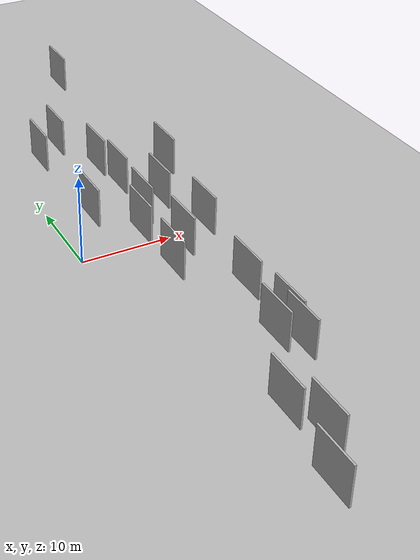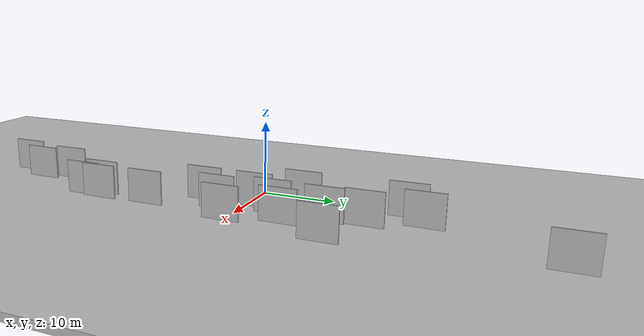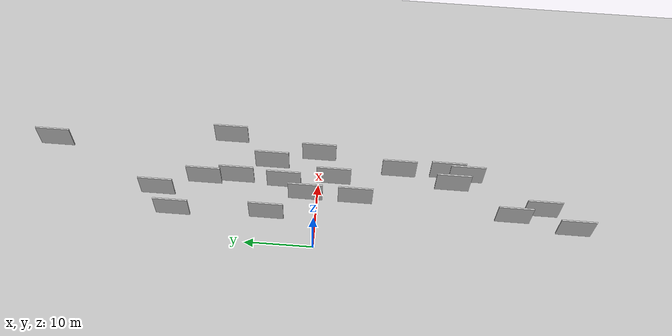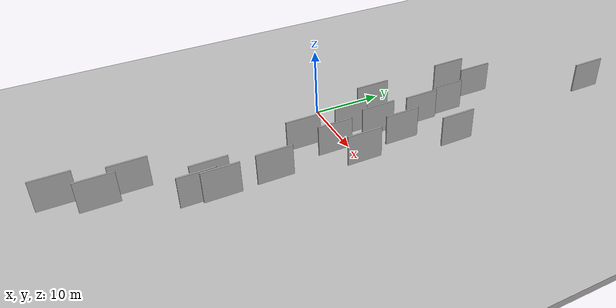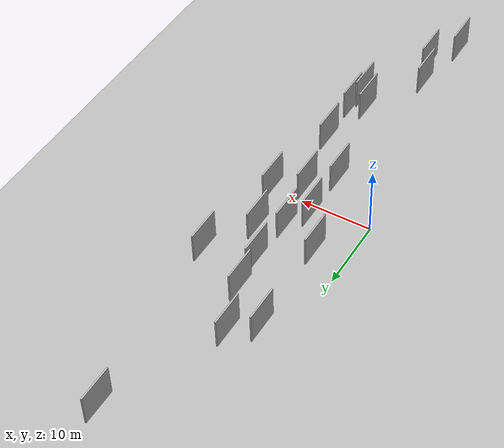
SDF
<?xml version="1.0" encoding="utf-8"?>

<sdf version="1.6">

   <world name="default">

      <gui fullscreen="0">

         <camera name="user_camera">

            <pose>-15 0 4.57585 0 0 0</pose>

            <view_controller>orbit</view_controller>

         </camera>

      </gui>

      <scene>

         <sky>

           <clouds>

             <speed>12</speed>

           </clouds>

         </sky>

         <ambient>0.4 0.4 0.4 1</ambient>

         <background>0.7 0.7 0.7 1</background>

         <shadows>1</shadows>

      </scene>

      <gravity>0 0 -9.8066</gravity>

      <magnetic_field>6e-06 2.3e-05 -4.2e-05</magnetic_field>

      <physics default="0" name="default_physics" type="ode">

         <ode>

            <solver>

               <type>quick</type>

               <iters>10</iters>

               <sor>1.0</sor>

               <use_dynamic_moi_rescaling>0</use_dynamic_moi_rescaling>

            </solver>

            <constraints>

               <cfm>0</cfm>

               <erp>0.2</erp>

               <contact_max_correcting_vel>100</contact_max_correcting_vel>

               <contact_surface_layer>0.001</contact_surface_layer>

            </constraints>

         </ode>

         <max_step_size>0.004</max_step_size>

         <real_time_factor>1</real_time_factor>

         <real_time_update_rate>250</real_time_update_rate>

      </physics>

      <light name="sun" type="directional">

         <cast_shadows>1</cast_shadows>

         <pose>0 0 10 0 0 0</pose>

         <diffuse>0.8 0.8 0.8 1</diffuse>

         <specular>0.2 0.2 0.2 1</specular>

         <attenuation>

            <range>1000</range>

            <constant>0.9</constant>

            <linear>0.01</linear>

            <quadratic>0.001</quadratic>

         </attenuation>

         <direction>-0.5 0.1 -0.9</direction>

      </light>

      <include>

         <name>ground_plane_1</name>

         <uri>model://HANNAS_ground_plane</uri>

         <pose>0 0 0  0 0 0</pose>

      </include>

      <include>

         <name>ground_plane_2</name>

         <uri>model://HANNAS_ground_plane</uri>

         <pose>100 0 0  0 0 0</pose>

      </include>

      <model name="HANNAS_wall_1">

         <static>1</static>

         <pose frame="">12.7183 -18.7903 0.0 0.000000 0.000000 1.570796</pose>

         <link name="link">

            <pose frame="">0 0 2.50 0 0 0</pose>

            <collision name="collision">

               <geometry>

                  <box>

                     <size>5.00 0.2 5.00</size>

                  </box>

               </geometry>

               <max_contacts>10</max_contacts>

               <surface>

                  <contact>

                     <ode/>

                  </contact>

                  <bounce/>

                  <friction>

                     <torsional>

                        <ode/>

                     </torsional>

                     <ode/>

                  </friction>

               </surface>

            </collision>

            <visual name="visual">

               <cast_shadows>0</cast_shadows>

               <geometry>

                  <box>

                     <size>5.00 0.2 5.00</size>

                  </box>

               </geometry>

               <material>

                  <script>

                     <uri>model://HANNAS_wall/materials/scripts</uri>

                     <uri>model://HANNAS_wall/materials/textures</uri>

                     <name>vrc/HANNAS_wall</name>

                  </script>

               </material>

            </visual>

            <self_collide>0</self_collide>

            <enable_wind>0</enable_wind>

            <kinematic>0</kinematic>

         </link>

      </model>

      <model name="HANNAS_wall_2">

         <static>1</static>

         <pose frame="">7.5720 -32.5413 0.0 0.000000 0.000000 1.570796</pose>

         <link name="link">

            <pose frame="">0 0 2.50 0 0 0</pose>

            <collision name="collision">

               <geometry>

                  <box>

                     <size>5.00 0.2 5.00</size>

                  </box>

               </geometry>

               <max_contacts>10</max_contacts>

               <surface>

                  <contact>

                     <ode/>

                  </contact>

                  <bounce/>

                  <friction>

                     <torsional>

                        <ode/>

                     </torsional>

                     <ode/>

                  </friction>

               </surface>

            </collision>

            <visual name="visual">

               <cast_shadows>0</cast_shadows>

               <geometry>

                  <box>

                     <size>5.00 0.2 5.00</size>

                  </box>

               </geometry>

               <material>

                  <script>

                     <uri>model://HANNAS_wall/materials/scripts</uri>

                     <uri>model://HANNAS_wall/materials/textures</uri>

                     <name>vrc/HANNAS_wall</name>

                  </script>

               </material>

            </visual>

            <self_collide>0</self_collide>

            <enable_wind>0</enable_wind>

            <kinematic>0</kinematic>

         </link>

      </model>

      <model name="HANNAS_wall_3">

         <static>1</static>

         <pose frame="">3.5824 20.7424 0.0 0.000000 0.000000 1.570796</pose>

         <link name="link">

            <pose frame="">0 0 2.50 0 0 0</pose>

            <collision name="collision">

               <geometry>

                  <box>

                     <size>5.00 0.2 5.00</size>

                  </box>

               </geometry>

               <max_contacts>10</max_contacts>

               <surface>

                  <contact>

                     <ode/>

                  </contact>

                  <bounce/>

                  <friction>

                     <torsional>

                        <ode/>

                     </torsional>

                     <ode/>

                  </friction>

               </surface>

            </collision>

            <visual name="visual">

               <cast_shadows>0</cast_shadows>

               <geometry>

                  <box>

                     <size>5.00 0.2 5.00</size>

                  </box>

               </geometry>

               <material>

                  <script>

                     <uri>model://HANNAS_wall/materials/scripts</uri>

                     <uri>model://HANNAS_wall/materials/textures</uri>

                     <name>vrc/HANNAS_wall</name>

                  </script>

               </material>

            </visual>

            <self_collide>0</self_collide>

            <enable_wind>0</enable_wind>

            <kinematic>0</kinematic>

         </link>

      </model>

      <model name="HANNAS_wall_4">

         <static>1</static>

         <pose frame="">7.5482 1.7457 0.0 0.000000 0.000000 1.570796</pose>

         <link name="link">

            <pose frame="">0 0 2.50 0 0 0</pose>

            <collision name="collision">

               <geometry>

                  <box>

                     <size>5.00 0.2 5.00</size>

                  </box>

               </geometry>

               <max_contacts>10</max_contacts>

               <surface>

                  <contact>

                     <ode/>

                  </contact>

                  <bounce/>

                  <friction>

                     <torsional>

                        <ode/>

                     </torsional>

                     <ode/>

                  </friction>

               </surface>

            </collision>

            <visual name="visual">

               <cast_shadows>0</cast_shadows>

               <geometry>

                  <box>

                     <size>5.00 0.2 5.00</size>

                  </box>

               </geometry>

               <material>

                  <script>

                     <uri>model://HANNAS_wall/materials/scripts</uri>

                     <uri>model://HANNAS_wall/materials/textures</uri>

                     <name>vrc/HANNAS_wall</name>

                  </script>

               </material>

            </visual>

            <self_collide>0</self_collide>

            <enable_wind>0</enable_wind>

            <kinematic>0</kinematic>

         </link>

      </model>

      <model name="HANNAS_wall_5">

         <static>1</static>

         <pose frame="">16.3264 13.5183 0.0 0.000000 0.000000 1.570796</pose>

         <link name="link">

            <pose frame="">0 0 2.50 0 0 0</pose>

            <collision name="collision">

               <geometry>

                  <box>

                     <size>5.00 0.2 5.00</size>

                  </box>

               </geometry>

               <max_contacts>10</max_contacts>

               <surface>

                  <contact>

                     <ode/>

                  </contact>

                  <bounce/>

                  <friction>

                     <torsional>

                        <ode/>

                     </torsional>

                     <ode/>

                  </friction>

               </surface>

            </collision>

            <visual name="visual">

               <cast_shadows>0</cast_shadows>

               <geometry>

                  <box>

                     <size>5.00 0.2 5.00</size>

                  </box>

               </geometry>

               <material>

                  <script>

                     <uri>model://HANNAS_wall/materials/scripts</uri>

                     <uri>model://HANNAS_wall/materials/textures</uri>

                     <name>vrc/HANNAS_wall</name>

                  </script>

               </material>

            </visual>

            <self_collide>0</self_collide>

            <enable_wind>0</enable_wind>

            <kinematic>0</kinematic>

         </link>

      </model>

      <model name="HANNAS_wall_6">

         <static>1</static>

         <pose frame="">9.6237 11.9498 0.0 0.000000 0.000000 1.570796</pose>

         <link name="link">

            <pose frame="">0 0 2.50 0 0 0</pose>

            <collision name="collision">

               <geometry>

                  <box>

                     <size>5.00 0.2 5.00</size>

                  </box>

               </geometry>

               <max_contacts>10</max_contacts>

               <surface>

                  <contact>

                     <ode/>

                  </contact>

                  <bounce/>

                  <friction>

                     <torsional>

                        <ode/>

                     </torsional>

                     <ode/>

                  </friction>

               </surface>

            </collision>

            <visual name="visual">

               <cast_shadows>0</cast_shadows>

               <geometry>

                  <box>

                     <size>5.00 0.2 5.00</size>

                  </box>

               </geometry>

               <material>

                  <script>

                     <uri>model://HANNAS_wall/materials/scripts</uri>

                     <uri>model://HANNAS_wall/materials/textures</uri>

                     <name>vrc/HANNAS_wall</name>

                  </script>

               </material>

            </visual>

            <self_collide>0</self_collide>

            <enable_wind>0</enable_wind>

            <kinematic>0</kinematic>

         </link>

      </model>

      <model name="HANNAS_wall_7">

         <static>1</static>

         <pose frame="">12.3189 -21.5882 0.0 0.000000 0.000000 1.570796</pose>

         <link name="link">

            <pose frame="">0 0 2.50 0 0 0</pose>

            <collision name="collision">

               <geometry>

                  <box>

                     <size>5.00 0.2 5.00</size>

                  </box>

               </geometry>

               <max_contacts>10</max_contacts>

               <surface>

                  <contact>

                     <ode/>

                  </contact>

                  <bounce/>

                  <friction>

                     <torsional>

                        <ode/>

                     </torsional>

                     <ode/>

                  </friction>

               </surface>

            </collision>

            <visual name="visual">

               <cast_shadows>0</cast_shadows>

               <geometry>

                  <box>

                     <size>5.00 0.2 5.00</size>

                  </box>

               </geometry>

               <material>

                  <script>

                     <uri>model://HANNAS_wall/materials/scripts</uri>

                     <uri>model://HANNAS_wall/materials/textures</uri>

                     <name>vrc/HANNAS_wall</name>

                  </script>

               </material>

            </visual>

            <self_collide>0</self_collide>

            <enable_wind>0</enable_wind>

            <kinematic>0</kinematic>

         </link>

      </model>

      <model name="HANNAS_wall_8">

         <static>1</static>

         <pose frame="">14.2685 0.2228 0.0 0.000000 0.000000 1.570796</pose>

         <link name="link">

            <pose frame="">0 0 2.50 0 0 0</pose>

            <collision name="collision">

               <geometry>

                  <box>

                     <size>5.00 0.2 5.00</size>

                  </box>

               </geometry>

               <max_contacts>10</max_contacts>

               <surface>

                  <contact>

                     <ode/>

                  </contact>

                  <bounce/>

                  <friction>

                     <torsional>

                        <ode/>

                     </torsional>

                     <ode/>

                  </friction>

               </surface>

            </collision>

            <visual name="visual">

               <cast_shadows>0</cast_shadows>

               <geometry>

                  <box>

                     <size>5.00 0.2 5.00</size>

                  </box>

               </geometry>

               <material>

                  <script>

                     <uri>model://HANNAS_wall/materials/scripts</uri>

                     <uri>model://HANNAS_wall/materials/textures</uri>

                     <name>vrc/HANNAS_wall</name>

                  </script>

               </material>

            </visual>

            <self_collide>0</self_collide>

            <enable_wind>0</enable_wind>

            <kinematic>0</kinematic>

         </link>

      </model>

      <model name="HANNAS_wall_9">

         <static>1</static>

         <pose frame="">9.0764 16.7227 0.0 0.000000 0.000000 1.570796</pose>

         <link name="link">

            <pose frame="">0 0 2.50 0 0 0</pose>

            <collision name="collision">

               <geometry>

                  <box>

                     <size>5.00 0.2 5.00</size>

                  </box>

               </geometry>

               <max_contacts>10</max_contacts>

               <surface>

                  <contact>

                     <ode/>

                  </contact>

                  <bounce/>

                  <friction>

                     <torsional>

                        <ode/>

                     </torsional>

                     <ode/>

                  </friction>

               </surface>

            </collision>

            <visual name="visual">

               <cast_shadows>0</cast_shadows>

               <geometry>

                  <box>

                     <size>5.00 0.2 5.00</size>

                  </box>

               </geometry>

               <material>

                  <script>

                     <uri>model://HANNAS_wall/materials/scripts</uri>

                     <uri>model://HANNAS_wall/materials/textures</uri>

                     <name>vrc/HANNAS_wall</name>

                  </script>

               </material>

            </visual>

            <self_collide>0</self_collide>

            <enable_wind>0</enable_wind>

            <kinematic>0</kinematic>

         </link>

      </model>

      <model name="HANNAS_wall_10">

         <static>1</static>

         <pose frame="">10.7737 -19.5997 0.0 0.000000 0.000000 1.570796</pose>

         <link name="link">

            <pose frame="">0 0 2.50 0 0 0</pose>

            <collision name="collision">

               <geometry>

                  <box>

                     <size>5.00 0.2 5.00</size>

                  </box>

               </geometry>

               <max_contacts>10</max_contacts>

               <surface>

                  <contact>

                     <ode/>

                  </contact>

                  <bounce/>

                  <friction>

                     <torsional>

                        <ode/>

                     </torsional>

                     <ode/>

                  </friction>

               </surface>

            </collision>

            <visual name="visual">

               <cast_shadows>0</cast_shadows>

               <geometry>

                  <box>

                     <size>5.00 0.2 5.00</size>

                  </box>

               </geometry>

               <material>

                  <script>

                     <uri>model://HANNAS_wall/materials/scripts</uri>

                     <uri>model://HANNAS_wall/materials/textures</uri>

                     <name>vrc/HANNAS_wall</name>

                  </script>

               </material>

            </visual>

            <self_collide>0</self_collide>

            <enable_wind>0</enable_wind>

            <kinematic>0</kinematic>

         </link>

      </model>

      <model name="HANNAS_wall_11">

         <static>1</static>

         <pose frame="">4.0528 7.1282 0.0 0.000000 0.000000 1.570796</pose>

         <link name="link">

            <pose frame="">0 0 2.50 0 0 0</pose>

            <collision name="collision">

               <geometry>

                  <box>

                     <size>5.00 0.2 5.00</size>

                  </box>

               </geometry>

               <max_contacts>10</max_contacts>

               <surface>

                  <contact>

                     <ode/>

                  </contact>

                  <bounce/>

                  <friction>

                     <torsional>

                        <ode/>

                     </torsional>

                     <ode/>

                  </friction>

               </surface>

            </collision>

            <visual name="visual">

               <cast_shadows>0</cast_shadows>

               <geometry>

                  <box>

                     <size>5.00 0.2 5.00</size>

                  </box>

               </geometry>

               <material>

                  <script>

                     <uri>model://HANNAS_wall/materials/scripts</uri>

                     <uri>model://HANNAS_wall/materials/textures</uri>

                     <name>vrc/HANNAS_wall</name>

                  </script>

               </material>

            </visual>

            <self_collide>0</self_collide>

            <enable_wind>0</enable_wind>

            <kinematic>0</kinematic>

         </link>

      </model>

      <model name="HANNAS_wall_12">

         <static>1</static>

         <pose frame="">12.4394 7.0411 0.0 0.000000 0.000000 1.570796</pose>

         <link name="link">

            <pose frame="">0 0 2.50 0 0 0</pose>

            <collision name="collision">

               <geometry>

                  <box>

                     <size>5.00 0.2 5.00</size>

                  </box>

               </geometry>

               <max_contacts>10</max_contacts>

               <surface>

                  <contact>

                     <ode/>

                  </contact>

                  <bounce/>

                  <friction>

                     <torsional>

                        <ode/>

                     </torsional>

                     <ode/>

                  </friction>

               </surface>

            </collision>

            <visual name="visual">

               <cast_shadows>0</cast_shadows>

               <geometry>

                  <box>

                     <size>5.00 0.2 5.00</size>

                  </box>

               </geometry>

               <material>

                  <script>

                     <uri>model://HANNAS_wall/materials/scripts</uri>

                     <uri>model://HANNAS_wall/materials/textures</uri>

                     <name>vrc/HANNAS_wall</name>

                  </script>

               </material>

            </visual>

            <self_collide>0</self_collide>

            <enable_wind>0</enable_wind>

            <kinematic>0</kinematic>

         </link>

      </model>

      <model name="HANNAS_wall_13">

         <static>1</static>

         <pose frame="">10.4718 -2.1907 0.0 0.000000 0.000000 1.570796</pose>

         <link name="link">

            <pose frame="">0 0 2.50 0 0 0</pose>

            <collision name="collision">

               <geometry>

                  <box>

                     <size>5.00 0.2 5.00</size>

                  </box>

               </geometry>

               <max_contacts>10</max_contacts>

               <surface>

                  <contact>

                     <ode/>

                  </contact>

                  <bounce/>

                  <friction>

                     <torsional>

                        <ode/>

                     </torsional>

                     <ode/>

                  </friction>

               </surface>

            </collision>

            <visual name="visual">

               <cast_shadows>0</cast_shadows>

               <geometry>

                  <box>

                     <size>5.00 0.2 5.00</size>

                  </box>

               </geometry>

               <material>

                  <script>

                     <uri>model://HANNAS_wall/materials/scripts</uri>

                     <uri>model://HANNAS_wall/materials/textures</uri>

                     <name>vrc/HANNAS_wall</name>

                  </script>

               </material>

            </visual>

            <self_collide>0</self_collide>

            <enable_wind>0</enable_wind>

            <kinematic>0</kinematic>

         </link>

      </model>

      <model name="HANNAS_wall_14">

         <static>1</static>

         <pose frame="">7.5334 -5.5211 0.0 0.000000 0.000000 1.570796</pose>

         <link name="link">

            <pose frame="">0 0 2.50 0 0 0</pose>

            <collision name="collision">

               <geometry>

                  <box>

                     <size>5.00 0.2 5.00</size>

                  </box>

               </geometry>

               <max_contacts>10</max_contacts>

               <surface>

                  <contact>

                     <ode/>

                  </contact>

                  <bounce/>

                  <friction>

                     <torsional>

                        <ode/>

                     </torsional>

                     <ode/>

                  </friction>

               </surface>

            </collision>

            <visual name="visual">

               <cast_shadows>0</cast_shadows>

               <geometry>

                  <box>

                     <size>5.00 0.2 5.00</size>

                  </box>

               </geometry>

               <material>

                  <script>

                     <uri>model://HANNAS_wall/materials/scripts</uri>

                     <uri>model://HANNAS_wall/materials/textures</uri>

                     <name>vrc/HANNAS_wall</name>

                  </script>

               </material>

            </visual>

            <self_collide>0</self_collide>

            <enable_wind>0</enable_wind>

            <kinematic>0</kinematic>

         </link>

      </model>

      <model name="HANNAS_wall_15">

         <static>1</static>

         <pose frame="">13.7086 39.7170 0.0 0.000000 0.000000 1.570796</pose>

         <link name="link">

            <pose frame="">0 0 2.50 0 0 0</pose>

            <collision name="collision">

               <geometry>

                  <box>

                     <size>5.00 0.2 5.00</size>

                  </box>

               </geometry>

               <max_contacts>10</max_contacts>

               <surface>

                  <contact>

                     <ode/>

                  </contact>

                  <bounce/>

                  <friction>

                     <torsional>

                        <ode/>

                     </torsional>

                     <ode/>

                  </friction>

               </surface>

            </collision>

            <visual name="visual">

               <cast_shadows>0</cast_shadows>

               <geometry>

                  <box>

                     <size>5.00 0.2 5.00</size>

                  </box>

               </geometry>

               <material>

                  <script>

                     <uri>model://HANNAS_wall/materials/scripts</uri>

                     <uri>model://HANNAS_wall/materials/textures</uri>

                     <name>vrc/HANNAS_wall</name>

                  </script>

               </material>

            </visual>

            <self_collide>0</self_collide>

            <enable_wind>0</enable_wind>

            <kinematic>0</kinematic>

         </link>

      </model>

      <model name="HANNAS_wall_16">

         <static>1</static>

         <pose frame="">6.7103 23.3654 0.0 0.000000 0.000000 1.570796</pose>

         <link name="link">

            <pose frame="">0 0 2.50 0 0 0</pose>

            <collision name="collision">

               <geometry>

                  <box>

                     <size>5.00 0.2 5.00</size>

                  </box>

               </geometry>

               <max_contacts>10</max_contacts>

               <surface>

                  <contact>

                     <ode/>

                  </contact>

                  <bounce/>

                  <friction>

                     <torsional>

                        <ode/>

                     </torsional>

                     <ode/>

                  </friction>

               </surface>

            </collision>

            <visual name="visual">

               <cast_shadows>0</cast_shadows>

               <geometry>

                  <box>

                     <size>5.00 0.2 5.00</size>

                  </box>

               </geometry>

               <material>

                  <script>

                     <uri>model://HANNAS_wall/materials/scripts</uri>

                     <uri>model://HANNAS_wall/materials/textures</uri>

                     <name>vrc/HANNAS_wall</name>

                  </script>

               </material>

            </visual>

            <self_collide>0</self_collide>

            <enable_wind>0</enable_wind>

            <kinematic>0</kinematic>

         </link>

      </model>

      <model name="HANNAS_wall_17">

         <static>1</static>

         <pose frame="">4.8845 -37.1571 0.0 0.000000 0.000000 1.570796</pose>

         <link name="link">

            <pose frame="">0 0 2.50 0 0 0</pose>

            <collision name="collision">

               <geometry>

                  <box>

                     <size>5.00 0.2 5.00</size>

                  </box>

               </geometry>

               <max_contacts>10</max_contacts>

               <surface>

                  <contact>

                     <ode/>

                  </contact>

                  <bounce/>

                  <friction>

                     <torsional>

                        <ode/>

                     </torsional>

                     <ode/>

                  </friction>

               </surface>

            </collision>

            <visual name="visual">

               <cast_shadows>0</cast_shadows>

               <geometry>

                  <box>

                     <size>5.00 0.2 5.00</size>

                  </box>

               </geometry>

               <material>

                  <script>

                     <uri>model://HANNAS_wall/materials/scripts</uri>

                     <uri>model://HANNAS_wall/materials/textures</uri>

                     <name>vrc/HANNAS_wall</name>

                  </script>

               </material>

            </visual>

            <self_collide>0</self_collide>

            <enable_wind>0</enable_wind>

            <kinematic>0</kinematic>

         </link>

      </model>

      <model name="HANNAS_wall_18">

         <static>1</static>

         <pose frame="">9.3553 5.0382 0.0 0.000000 0.000000 1.570796</pose>

         <link name="link">

            <pose frame="">0 0 2.50 0 0 0</pose>

            <collision name="collision">

               <geometry>

                  <box>

                     <size>5.00 0.2 5.00</size>

                  </box>

               </geometry>

               <max_contacts>10</max_contacts>

               <surface>

                  <contact>

                     <ode/>

                  </contact>

                  <bounce/>

                  <friction>

                     <torsional>

                        <ode/>

                     </torsional>

                     <ode/>

                  </friction>

               </surface>

            </collision>

            <visual name="visual">

               <cast_shadows>0</cast_shadows>

               <geometry>

                  <box>

                     <size>5.00 0.2 5.00</size>

                  </box>

               </geometry>

               <material>

                  <script>

                     <uri>model://HANNAS_wall/materials/scripts</uri>

                     <uri>model://HANNAS_wall/materials/textures</uri>

                     <name>vrc/HANNAS_wall</name>

                  </script>

               </material>

            </visual>

            <self_collide>0</self_collide>

            <enable_wind>0</enable_wind>

            <kinematic>0</kinematic>

         </link>

      </model>

      <model name="HANNAS_wall_19">

         <static>1</static>

         <pose frame="">6.2324 -28.4190 0.0 0.000000 0.000000 1.570796</pose>

         <link name="link">

            <pose frame="">0 0 2.50 0 0 0</pose>

            <collision name="collision">

               <geometry>

                  <box>

                     <size>5.00 0.2 5.00</size>

                  </box>

               </geometry>

               <max_contacts>10</max_contacts>

               <surface>

                  <contact>

                     <ode/>

                  </contact>

                  <bounce/>

                  <friction>

                     <torsional>

                        <ode/>

                     </torsional>

                     <ode/>

                  </friction>

               </surface>

            </collision>

            <visual name="visual">

               <cast_shadows>0</cast_shadows>

               <geometry>

                  <box>

                     <size>5.00 0.2 5.00</size>

                  </box>

               </geometry>

               <material>

                  <script>

                     <uri>model://HANNAS_wall/materials/scripts</uri>

                     <uri>model://HANNAS_wall/materials/textures</uri>

                     <name>vrc/HANNAS_wall</name>

                  </script>

               </material>

            </visual>

            <self_collide>0</self_collide>

            <enable_wind>0</enable_wind>

            <kinematic>0</kinematic>

         </link>

      </model>

      <model name="HANNAS_wall_20">

         <static>1</static>

         <pose frame="">12.4793 -11.6744 0.0 0.000000 0.000000 1.570796</pose>

         <link name="link">

            <pose frame="">0 0 2.50 0 0 0</pose>

            <collision name="collision">

               <geometry>

                  <box>

                     <size>5.00 0.2 5.00</size>

                  </box>

               </geometry>

               <max_contacts>10</max_contacts>

               <surface>

                  <contact>

                     <ode/>

                  </contact>

                  <bounce/>

                  <friction>

                     <torsional>

                        <ode/>

                     </torsional>

                     <ode/>

                  </friction>

               </surface>

            </collision>

            <visual name="visual">

               <cast_shadows>0</cast_shadows>

               <geometry>

                  <box>

                     <size>5.00 0.2 5.00</size>

                  </box>

               </geometry>

               <material>

                  <script>

                     <uri>model://HANNAS_wall/materials/scripts</uri>

                     <uri>model://HANNAS_wall/materials/textures</uri>

                     <name>vrc/HANNAS_wall</name>

                  </script>

               </material>

            </visual>

            <self_collide>0</self_collide>

            <enable_wind>0</enable_wind>

            <kinematic>0</kinematic>

         </link>

      </model>

   </world>

</sdf>

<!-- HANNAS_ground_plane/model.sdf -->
<sdf version="1.4">
<model name="HANNAS_ground_plane">
  <static>true</static>
    <link name="link">
      <collision name="collision">
        <geometry>
          <plane>
            <normal>0 0 1</normal>
            <size>1000 1000</size>
          </plane>
        </geometry>
        <surface>
          <friction>
            <ode>
              <mu>100</mu>
              <mu2>50</mu2>
            </ode>
          </friction>
        </surface>
      </collision>
      <visual name="visual">
        <cast_shadows>false</cast_shadows>
        <geometry>
          <plane>
            <normal>0 0 1</normal>
            <size>1000 1000</size>
          </plane>
        </geometry>
        <material>
          <script>
            <uri>model://HANNAS_ground_plane/materials/scripts/HANNAS_ground_plane.material</uri>
	    <uri>model://HANNAS_ground_plane/materials/textures</uri>
            <name>HANNASGroundPlane/Image</name>
          </script>
        </material>
      </visual>
    </link>
  </model>
</sdf>
